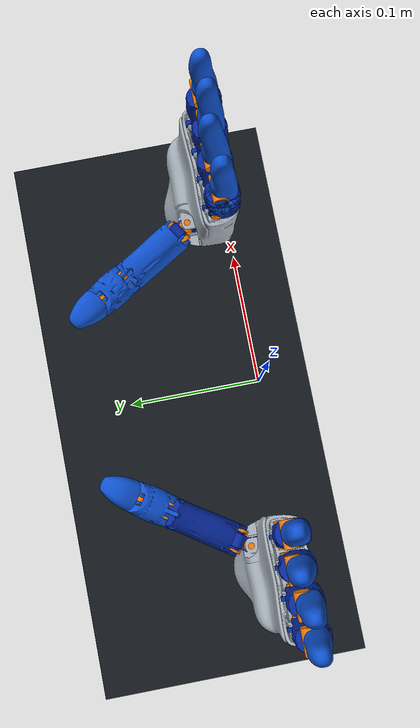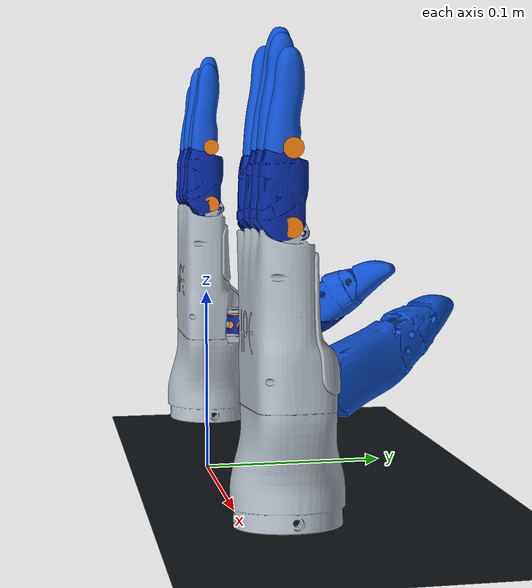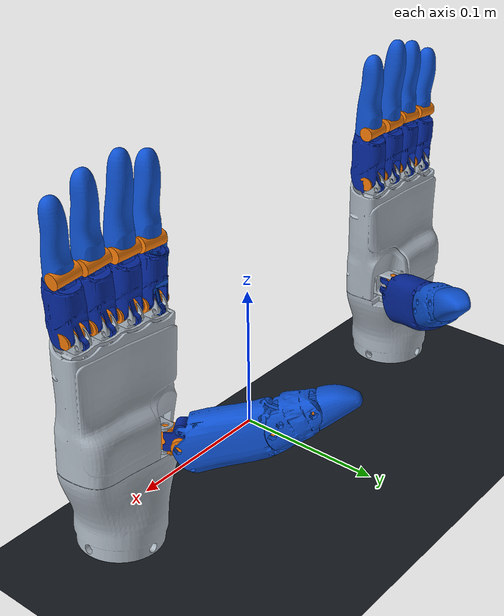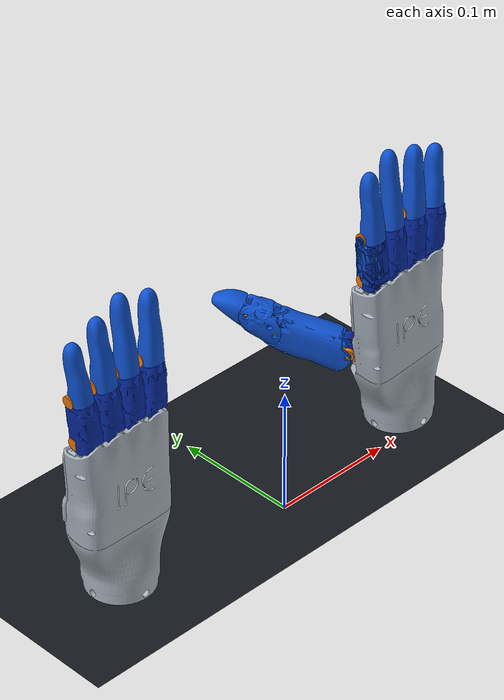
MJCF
<?xml version='1.0' encoding='utf-8'?>
<mujoco model="ih01_x1_dual_urdf">
  <compiler angle="radian" autolimits="true" />
  <option timestep="0.005" gravity="0 0 0" integrator="implicitfast" />
  <visual>
    <global offwidth="960" offheight="540" />
    <headlight ambient="0.26 0.26 0.28" diffuse="0.58 0.58 0.60" specular="0.14 0.14 0.14" />
    <rgba haze="0.06 0.075 0.10 1" />
  </visual>
  <asset>
    <texture name="sky" type="skybox" builtin="gradient" rgb1="0.025 0.035 0.055" rgb2="0.004 0.007 0.012" width="512" height="3072" />
    <texture name="floor_tex" type="2d" builtin="checker" mark="edge" rgb1="0.055 0.065 0.08" rgb2="0.11 0.13 0.16" markrgb="0.25 0.29 0.35" width="512" height="512" />
    <material name="floor" texture="floor_tex" texrepeat="5 5" reflectance="0" />
    <material name="shell_white" rgba="0.66 0.70 0.74 1" specular="0.22" shininess="0.32" />
    <material name="shell_blue" rgba="0.025 0.16 0.62 1" specular="0.20" shininess="0.30" />
    <material name="shell_blue_tip" rgba="0.055 0.32 0.82 1" specular="0.18" shininess="0.26" />
    <material name="joint_metal" rgba="0.95 0.48 0.035 1" specular="0.34" shininess="0.48" />
    <mesh name="lh_l_base_link" content_type="model/stl" file="../simulation/meshes/Dexhand-left/meshes/l_base_link.STL" />
    <mesh name="lh_l_thumb_yaw_Link" content_type="model/stl" file="../simulation/meshes/Dexhand-left/meshes/l_thumb_yaw_Link.STL" />
    <mesh name="lh_l_thumb_1_Link" content_type="model/stl" file="../simulation/meshes/Dexhand-left/meshes/l_thumb_1_Link.STL" />
    <mesh name="lh_l_thumb_2_Link" content_type="model/stl" file="../simulation/meshes/Dexhand-left/meshes/l_thumb_2_Link.STL" />
    <mesh name="lh_l_thumb_3_Link" content_type="model/stl" file="../simulation/meshes/Dexhand-left/meshes/l_thumb_3_Link.STL" />
    <mesh name="lh_l_index_1_Link" content_type="model/stl" file="../simulation/meshes/Dexhand-left/meshes/l_index_1_Link.STL" />
    <mesh name="lh_l_index_2_Link" content_type="model/stl" file="../simulation/meshes/Dexhand-left/meshes/l_index_2_Link.STL" />
    <mesh name="lh_l_middle_1_Link" content_type="model/stl" file="../simulation/meshes/Dexhand-left/meshes/l_middle_1_Link.STL" />
    <mesh name="lh_l_middle_2_Link" content_type="model/stl" file="../simulation/meshes/Dexhand-left/meshes/l_middle_2_Link.STL" />
    <mesh name="lh_l_ring_1_Link" content_type="model/stl" file="../simulation/meshes/Dexhand-left/meshes/l_ring_1_Link.STL" />
    <mesh name="lh_l_ring_2_Link" content_type="model/stl" file="../simulation/meshes/Dexhand-left/meshes/l_ring_2_Link.STL" />
    <mesh name="lh_l_little_1_Link" content_type="model/stl" file="../simulation/meshes/Dexhand-left/meshes/l_little_1_Link.STL" />
    <mesh name="lh_l_little_2_Link" content_type="model/stl" file="../simulation/meshes/Dexhand-left/meshes/l_little_2_Link.STL" />
    <mesh name="rh_base_link" content_type="model/stl" file="../simulation/meshes/revisions/2026-08-14-right-mesh-fix/Dexhand-right/meshes/base_link.STL" />
    <mesh name="rh_r_thumb1_Link" content_type="model/stl" file="../simulation/meshes/revisions/2026-08-14-right-mesh-fix/Dexhand-right/meshes/r_thumb1_Link.STL" />
    <mesh name="rh_r_thumb2_Link" content_type="model/stl" file="../simulation/meshes/revisions/2026-08-14-right-mesh-fix/Dexhand-right/meshes/r_thumb2_Link.STL" />
    <mesh name="rh_r_thumb3_Link" content_type="model/stl" file="../simulation/meshes/revisions/2026-08-14-right-mesh-fix/Dexhand-right/meshes/r_thumb3_Link.STL" />
    <mesh name="rh_r_thumb4_Link" content_type="model/stl" file="../simulation/meshes/revisions/2026-08-14-right-mesh-fix/Dexhand-right/meshes/r_thumb4_Link.STL" />
    <mesh name="rh_r_index1_Link" content_type="model/stl" file="../simulation/meshes/Dexhand-left/meshes/l_index_1_Link.STL" scale="-1 1 1" />
    <mesh name="rh_r_index2_Link" content_type="model/stl" file="../simulation/meshes/Dexhand-left/meshes/l_index_2_Link.STL" scale="-1 1 1" />
    <mesh name="rh_r_middle1_Link" content_type="model/stl" file="../simulation/meshes/Dexhand-left/meshes/l_middle_1_Link.STL" scale="-1 1 1" />
    <mesh name="rh_r_middle2_Link" content_type="model/stl" file="../simulation/meshes/Dexhand-left/meshes/l_middle_2_Link.STL" scale="-1 1 1" />
    <mesh name="rh_r_ring1_Link" content_type="model/stl" file="../simulation/meshes/Dexhand-left/meshes/l_ring_1_Link.STL" scale="-1 1 1" />
    <mesh name="rh_r_ring2_Link" content_type="model/stl" file="../simulation/meshes/Dexhand-left/meshes/l_ring_2_Link.STL" scale="-1 1 1" />
    <mesh name="rh_r_little1_Link" content_type="model/stl" file="../simulation/meshes/Dexhand-left/meshes/l_little_1_Link.STL" scale="-1 1 1" />
    <mesh name="rh_r_little2_Link" content_type="model/stl" file="../simulation/meshes/Dexhand-left/meshes/l_little_2_Link.STL" scale="-1 1 1" />
  </asset>
  <default>
    <joint damping="0.12" armature="0.0002" frictionloss="0.002" />
  </default>
  <worldbody>
    <light pos="-0.35 -0.30 0.70" dir="0.35 0.30 -0.70" diffuse="0.92 0.90 0.86" />
    <light pos="0.45 0.25 0.55" dir="-0.45 -0.25 -0.55" diffuse="0.38 0.48 0.72" />
    <geom name="ground" type="plane" pos="0 0 -0.01" size="1.20 1.20 0.01" material="floor" contype="1" conaffinity="3" condim="3" friction="0.8 0.1 0.01" />
    <body name="lh_hand" mocap="true" pos="-0.14 0.02 0.008" euler="3.14159265359 0 0">
      <geom type="mesh" mesh="lh_l_base_link" material="shell_white" contype="0" conaffinity="0" group="1" />
      <body name="l_thumb_yaw_Link" pos="0.020446 -0.014753 -0.058386">
        <inertial pos="0.00303049 -0.00371035 -0.00141075" quat="0.474801 0.870799 0.0842586 0.0957796" mass="0.00174074" diaginertia="8.47872e-08 6.66873e-08 4.47146e-08" />
        <joint name="l_thumb_yaw_joint" pos="0 0 0" axis="-0 -0 -1" range="0 1.39626" actuatorfrcrange="-2 2" />
        <geom type="mesh" mesh="lh_l_thumb_yaw_Link" material="shell_blue" contype="0" conaffinity="0" group="1" />
        <body name="l_thumb_1_Link" pos="0.0049487 -0.007826 0.001476">
          <inertial pos="0.0142859 -0.0212435 -0.00616423" quat="0.503216 0.813632 0.247672 0.153084" mass="0.0139644" diaginertia="5.1503e-06 3.8977e-06 1.48447e-06" />
          <joint name="l_thumb_1_joint" pos="0 0 0" axis="0.830459 0.557079 0" range="0 0.959931" actuatorfrcrange="-2 2" />
          <geom type="mesh" mesh="lh_l_thumb_1_Link" material="shell_blue" contype="0" conaffinity="0" group="1" />
          <body name="l_thumb_2_Link" pos="0.029608 -0.044138 -0.016524">
            <inertial pos="0.00607042 -0.00916419 -0.00734525" quat="0.448241 -0.277611 0.145575 0.83715" mass="0.00959607" diaginertia="1.21971e-06 1.135e-06 9.86428e-07" />
            <joint name="l_thumb_2_joint" pos="0 0 0" axis="0.830459 0.557079 0" range="0 1.22173" actuatorfrcrange="-2 2" stiffness="0.12" springref="0" damping="0.18" />
            <geom type="mesh" mesh="lh_l_thumb_2_Link" material="shell_blue_tip" contype="0" conaffinity="0" group="1" />
            <body name="l_thumb_3_Link" pos="0.010875 -0.016212 -0.010673">
              <inertial pos="0.0065033 -0.0097578 -0.0085891" quat="0.195416 0.803294 -0.428548 0.364524" mass="0.0060246" diaginertia="3.8969e-07 3.72891e-07 2.7668e-07" />
              <joint name="l_thumb_3_joint" pos="0 0 0" axis="0.830459 0.557079 0" range="0 1.39626" actuatorfrcrange="-2 2" stiffness="0.12" springref="0" damping="0.18" />
              <geom type="mesh" mesh="lh_l_thumb_3_Link" material="shell_blue_tip" contype="0" conaffinity="0" group="1" />
              <site name="lh_l_thumb_3_joint_axis" type="cylinder" pos="0 0 0" quat="0.70710678 -0.3939145 0.58722344 0" size="0.0048 0.0085" material="joint_metal" group="2" />
              <geom name="lh_l_thumb_3_Link_collision" type="capsule" fromto="0 0 0 0.013 -0.0195 -0.0172" size="0.0095" contype="1" conaffinity="3" condim="3" friction="0.7 0.03 0.005" margin="0.0008" rgba="0 0 0 0" group="4" />
            </body>
            <site name="lh_l_thumb_2_joint_axis" type="cylinder" pos="0 0 0" quat="0.70710678 -0.3939145 0.58722344 0" size="0.0048 0.0085" material="joint_metal" group="2" />
            <geom name="lh_l_thumb_2_Link_collision" type="capsule" fromto="0 0 0 0.010875 -0.016212 -0.010673" size="0.0095" contype="1" conaffinity="3" condim="3" friction="0.7 0.03 0.005" margin="0.0008" rgba="0 0 0 0" group="4" />
          </body>
          <site name="lh_l_thumb_1_joint_axis" type="cylinder" pos="0 0 0" quat="0.70710678 -0.3939145 0.58722344 0" size="0.0048 0.0085" material="joint_metal" group="2" />
        </body>
        <site name="lh_l_thumb_yaw_joint_axis" type="cylinder" pos="0 0 0" quat="0 1 0 0" size="0.0048 0.0085" material="joint_metal" group="2" />
      </body>
      <body name="l_index_1_Link" pos="0.026544 0.00265 -0.13762">
        <inertial pos="0.00055471 0.0039159 -0.013508" quat="0.997619 -0.0663002 -0.0189771 -0.00013727" mass="0.0068893" diaginertia="1.00759e-06 9.74777e-07 4.5437e-07" />
        <joint name="l_index_1_joint" pos="0 0 0" axis="-0.999292 0 -0.0376151" range="0 1.39626" actuatorfrcrange="-2 2" />
        <geom type="mesh" mesh="lh_l_index_1_Link" material="shell_blue" contype="0" conaffinity="0" group="1" />
        <body name="l_index_2_Link" pos="0.0013535 0.00016841 -0.035957">
          <inertial pos="0.000803053 0.0025252 -0.0213918" quat="0.998579 -0.0498121 -0.01891 -0.000639823" mass="0.0083279" diaginertia="1.86257e-06 1.85363e-06 2.22203e-07" />
          <joint name="l_index_2_joint" pos="0 0 0" axis="-0.999292 -0 -0.0376151" range="0 1.5708" actuatorfrcrange="-2 2" stiffness="0.16" springref="0" damping="0.20" />
          <geom type="mesh" mesh="lh_l_index_2_Link" material="shell_blue_tip" contype="0" conaffinity="0" group="1" />
          <site name="lh_l_index_2_joint_axis" type="cylinder" pos="0 0 0" quat="0.69368036 0 -0.72028297 0" size="0.0048 0.0085" material="joint_metal" group="2" />
          <geom name="lh_l_index_2_Link_collision" type="capsule" fromto="0 0 0 0 0 -0.043" size="0.008" contype="1" conaffinity="3" condim="3" friction="0.7 0.03 0.005" margin="0.0008" rgba="0 0 0 0" group="4" />
        </body>
        <site name="lh_l_index_1_joint_axis" type="cylinder" pos="0 0 0" quat="0.69368036 -0 -0.72028297 0" size="0.0048 0.0085" material="joint_metal" group="2" />
      </body>
      <body name="l_middle_1_Link" pos="0.0074174 0.00265 -0.13796">
        <inertial pos="2.0834e-06 0.0035571 -0.013624" quat="0.996851 -0.0792723 0.00142356 0.00125434" mass="0.0068893" diaginertia="1.0076e-06 9.74474e-07 4.54661e-07" />
        <joint name="l_middle_1_joint" pos="0 0 0" axis="-0.999995 0 0.00323982" range="0 1.39626" actuatorfrcrange="-2 2" />
        <geom type="mesh" mesh="lh_l_middle_1_Link" material="shell_blue" contype="0" conaffinity="0" group="1" />
        <body name="l_middle_2_Link" pos="-0.00011655 -0.00078748 -0.035975">
          <inertial pos="-7.9346e-05 0.00153957 -0.0238387" quat="0.997879 -0.0650835 0.00151093 0.000166722" mass="0.00916877" diaginertia="2.46857e-06 2.4482e-06 2.4433e-07" />
          <joint name="l_middle_2_joint" pos="0 0 0" axis="-0.999995 -0 0.00323982" range="0 1.5708" actuatorfrcrange="-2 2" stiffness="0.16" springref="0" damping="0.20" />
          <geom type="mesh" mesh="lh_l_middle_2_Link" material="shell_blue_tip" contype="0" conaffinity="0" group="1" />
          <site name="lh_l_middle_2_joint_axis" type="cylinder" pos="0 0 0" quat="0.7082513 0 -0.7059604 0" size="0.0048 0.0085" material="joint_metal" group="2" />
          <geom name="lh_l_middle_2_Link_collision" type="capsule" fromto="0 0 0 0 0 -0.048" size="0.008" contype="1" conaffinity="3" condim="3" friction="0.7 0.03 0.005" margin="0.0008" rgba="0 0 0 0" group="4" />
        </body>
        <site name="lh_l_middle_1_joint_axis" type="cylinder" pos="0 0 0" quat="0.7082513 -0 -0.7059604 0" size="0.0048 0.0085" material="joint_metal" group="2" />
      </body>
      <body name="l_ring_1_Link" pos="-0.011613 0.00265 -0.13744">
        <inertial pos="-0.00063012 0.0039157 -0.013504" quat="0.997493 -0.0662395 0.0247613 0.00277741" mass="0.0068892" diaginertia="1.00763e-06 9.74777e-07 4.54361e-07" />
        <joint name="l_ring_1_joint" pos="0 0 0" axis="-0.998748 0 0.0500289" range="0 1.39626" actuatorfrcrange="-2 2" />
        <geom type="mesh" mesh="lh_l_ring_1_Link" material="shell_blue" contype="0" conaffinity="0" group="1" />
        <body name="l_ring_2_Link" pos="-0.0018002 0.00016841 -0.035937">
          <inertial pos="-0.0010732 0.0025253 -0.02138" quat="0.998449 -0.0497854 0.024877 0.00162916" mass="0.0083278" diaginertia="1.86252e-06 1.85365e-06 2.22197e-07" />
          <joint name="l_ring_2_joint" pos="0 0 0" axis="-0.996195 -0 0.0871564" range="0 1.5708" actuatorfrcrange="-2 2" stiffness="0.16" springref="0" damping="0.20" />
          <geom type="mesh" mesh="lh_l_ring_2_Link" material="shell_blue_tip" contype="0" conaffinity="0" group="1" />
          <site name="lh_l_ring_2_joint_axis" type="cylinder" pos="0 0 0" quat="0.73727755 0 -0.67558998 0" size="0.0048 0.0085" material="joint_metal" group="2" />
          <geom name="lh_l_ring_2_Link_collision" type="capsule" fromto="0 0 0 0 0 -0.043" size="0.008" contype="1" conaffinity="3" condim="3" friction="0.7 0.03 0.005" margin="0.0008" rgba="0 0 0 0" group="4" />
        </body>
        <site name="lh_l_ring_1_joint_axis" type="cylinder" pos="0 0 0" quat="0.7245788 -0 -0.68919196 0" size="0.0048 0.0085" material="joint_metal" group="2" />
      </body>
      <body name="l_little_1_Link" pos="-0.030714 0.00265 -0.13605">
        <inertial pos="9.37216e-05 -0.00391585 -0.0135189" quat="0.9978 0.0662921 -0.00020608 -0.00112124" mass="0.00688931" diaginertia="1.00761e-06 9.74778e-07 4.5437e-07" />
        <joint name="l_little_1_joint" pos="0 0 0" axis="-0.996195 0 0.0871564" range="0 1.39626" actuatorfrcrange="-2 2" />
        <geom type="mesh" mesh="lh_l_little_1_Link" material="shell_blue" contype="0" conaffinity="0" group="1" />
        <body name="l_little_2_Link" pos="-0.0031349 0.00016975 -0.035832">
          <inertial pos="-0.0015865 0.0025076 -0.018095" quat="0.997276 -0.059618 0.0433541 0.00249154" mass="0.0065771" diaginertia="1.08557e-06 1.07752e-06 1.60199e-07" />
          <joint name="l_little_2_joint" pos="0 0 0" axis="-0.996195 -0 0.0871564" range="0 1.5708" actuatorfrcrange="-2 2" stiffness="0.16" springref="0" damping="0.20" />
          <geom type="mesh" mesh="lh_l_little_2_Link" material="shell_blue_tip" contype="0" conaffinity="0" group="1" />
          <site name="lh_l_little_2_joint_axis" type="cylinder" pos="0 0 0" quat="0.73727755 0 -0.67558998 0" size="0.0048 0.0085" material="joint_metal" group="2" />
          <geom name="lh_l_little_2_Link_collision" type="capsule" fromto="0 0 0 0 0 -0.039" size="0.008" contype="1" conaffinity="3" condim="3" friction="0.7 0.03 0.005" margin="0.0008" rgba="0 0 0 0" group="4" />
        </body>
        <site name="lh_l_little_1_joint_axis" type="cylinder" pos="0 0 0" quat="0.73727755 -0 -0.67558998 0" size="0.0048 0.0085" material="joint_metal" group="2" />
      </body>
      <geom name="lh_palm_collision" type="box" pos="0 -0.013 -0.073" size="0.052 0.014 0.052" contype="1" conaffinity="3" condim="3" friction="0.7 0.03 0.005" margin="0.0008" rgba="0 0 0 0" group="4" />
    </body>
    <body name="rh_hand" mocap="true" pos="0.14 0.02 0.008" euler="3.14159265359 0 0">
      <geom type="mesh" mesh="rh_base_link" material="shell_white" contype="0" conaffinity="0" group="1" />
      <body name="r_thumb1_Link" pos="-0.027072 -0.015739 -0.055499">
        <inertial pos="-0.0015511 -0.0027329 -0.0024235" quat="0.478109 0.865945 -0.062186 -0.132981" mass="0.0017407" diaginertia="8.47865e-08 6.66868e-08 4.47147e-08" />
        <joint name="r_thumb1_joint" pos="0 0 0" axis="0.0871564 0 0.996195" range="0 1.39626" actuatorfrcrange="-2 2" />
        <geom type="mesh" mesh="rh_r_thumb1_Link" material="shell_blue" contype="0" conaffinity="0" group="1" />
        <body name="r_thumb2_Link" pos="-0.0031983 -0.0068542 0.00061844">
          <inertial pos="-0.01474 -0.021457 -0.0044646" quat="0.520277 0.802354 -0.222747 -0.189534" mass="0.013886" diaginertia="5.12903e-06 3.8821e-06 1.47877e-06" />
          <joint name="r_thumb2_joint" pos="0 0 0" axis="0.82893 -0.55463 -0.072522" range="0 0.959931" actuatorfrcrange="-2 2" />
          <geom type="mesh" mesh="rh_r_thumb2_Link" material="shell_blue_tip" contype="0" conaffinity="0" group="1" />
          <body name="r_thumb3_Link" pos="-0.030794 -0.044317 -0.01304">
            <inertial pos="-0.00672413 -0.00946996 -0.00628531" quat="0.825366 -0.129743 0.310791 0.453152" mass="0.00938232" diaginertia="1.21197e-06 1.11419e-06 9.73065e-07" />
            <joint name="r_thumb3_joint" pos="0 0 0" axis="0.82893 -0.55463 -0.072522" range="0 1.22173" actuatorfrcrange="-2 2" stiffness="0.12" springref="0" damping="0.18" />
            <geom type="mesh" mesh="rh_r_thumb3_Link" material="shell_blue_tip" contype="0" conaffinity="0" group="1" />
            <body name="r_thumb4_Link" pos="-0.012257 -0.01718 -0.0087094">
              <inertial pos="-0.00684703 -0.00953345 -0.00762481" quat="0.41841 0.433265 -0.776309 0.185902" mass="0.00602459" diaginertia="3.89688e-07 3.72888e-07 2.7668e-07" />
              <joint name="r_thumb4_joint" pos="0 0 0" axis="0.82893 -0.55463 -0.072522" range="0 1.39626" actuatorfrcrange="-2 2" stiffness="0.12" springref="0" damping="0.18" />
              <geom type="mesh" mesh="rh_r_thumb4_Link" material="shell_blue_tip" contype="0" conaffinity="0" group="1" />
              <site name="rh_r_thumb4_joint_axis" type="cylinder" pos="0 0 0" quat="0.68098383 0.40722724 0.60862714 0" size="0.0048 0.0085" material="joint_metal" group="2" />
              <geom name="rh_r_thumb4_Link_collision" type="capsule" fromto="0 0 0 -0.013 -0.0195 -0.0172" size="0.0095" contype="2" conaffinity="2" condim="3" friction="0.7 0.03 0.005" margin="0.0008" rgba="0 0 0 0" group="4" />
            </body>
            <site name="rh_r_thumb3_joint_axis" type="cylinder" pos="0 0 0" quat="0.68098383 0.40722724 0.60862714 0" size="0.0048 0.0085" material="joint_metal" group="2" />
            <geom name="rh_r_thumb3_Link_collision" type="capsule" fromto="0 0 0 -0.012257 -0.01718 -0.0087094" size="0.0095" contype="2" conaffinity="2" condim="3" friction="0.7 0.03 0.005" margin="0.0008" rgba="0 0 0 0" group="4" />
          </body>
          <site name="rh_r_thumb2_joint_axis" type="cylinder" pos="0 0 0" quat="0.68098383 0.40722724 0.60862714 0" size="0.0048 0.0085" material="joint_metal" group="2" />
        </body>
        <site name="rh_r_thumb1_joint_axis" type="cylinder" pos="0 0 0" quat="0.99904821 -0 0.043619701 0" size="0.0048 0.0085" material="joint_metal" group="2" />
      </body>
      <body name="r_index1_Link" pos="-0.038388 0.00265 -0.13478">
        <inertial pos="-0.00055471 0.0039159 -0.013508" quat="0.996697 -0.0521392 0.0621016 0.00437152" mass="0.0059322" diaginertia="9.0857e-07 8.74342e-07 3.64799e-07" />
        <joint name="r_index1_joint" pos="0 0 0" axis="-0.999292 -0 0.0376151" range="0 1.39626" actuatorfrcrange="-2 2" />
        <geom type="mesh" mesh="rh_r_index1_Link" material="shell_blue" contype="0" conaffinity="0" group="1" />
        <body name="r_index2_Link" pos="-0.0013535 0.00016841 -0.035957">
          <inertial pos="-0.000803053 0.0025252 -0.0213918" quat="0.996819 -0.0496899 0.0622127 0.00348921" mass="0.00828461" diaginertia="1.86237e-06 1.8535e-06 2.22096e-07" />
          <joint name="r_index2_joint" pos="0 0 0" axis="-0.999292 0 0.0376151" range="0 1.5708" actuatorfrcrange="-2 2" stiffness="0.16" springref="0" damping="0.20" />
          <geom type="mesh" mesh="rh_r_index2_Link" material="shell_blue_tip" contype="0" conaffinity="0" group="1" />
          <site name="rh_r_index2_joint_axis" type="cylinder" pos="0 0 0" quat="0.72028297 -0 -0.69368036 0" size="0.0048 0.0085" material="joint_metal" group="2" />
          <geom name="rh_r_index2_Link_collision" type="capsule" fromto="0 0 0 0 0 -0.043" size="0.008" contype="2" conaffinity="2" condim="3" friction="0.7 0.03 0.005" margin="0.0008" rgba="0 0 0 0" group="4" />
        </body>
        <site name="rh_r_index1_joint_axis" type="cylinder" pos="0 0 0" quat="0.72028297 0 -0.69368036 0" size="0.0048 0.0085" material="joint_metal" group="2" />
      </body>
      <body name="r_middle1_Link" pos="-0.019363 0.00265 -0.13679">
        <inertial pos="-2.0834e-06 0.0035571 -0.013624" quat="0.997758 -0.0522183 0.0417257 0.00330642" mass="0.00593218" diaginertia="9.08568e-07 8.74339e-07 3.64795e-07" />
        <joint name="r_middle1_joint" pos="0 0 0" axis="-0.999995 -0 -0.00323982" range="0 1.39626" actuatorfrcrange="-2 2" />
        <geom type="mesh" mesh="rh_r_middle1_Link" material="shell_blue" contype="0" conaffinity="0" group="1" />
        <body name="r_middle2_Link" pos="0.00011655 -0.00078748 -0.035975">
          <inertial pos="7.9346e-05 0.00153957 -0.0238387" quat="0.998158 -0.0438766 0.0418592 0.00195134" mass="0.00912541" diaginertia="2.46825e-06 2.44796e-06 2.44221e-07" />
          <joint name="r_middle2_joint" pos="0 0 0" axis="-0.999995 0 -0.00323982" range="0 1.5708" actuatorfrcrange="-2 2" stiffness="0.16" springref="0" damping="0.20" />
          <geom type="mesh" mesh="rh_r_middle2_Link" material="shell_blue_tip" contype="0" conaffinity="0" group="1" />
          <site name="rh_r_middle2_joint_axis" type="cylinder" pos="0 0 0" quat="0.7059604 -0 -0.7082513 0" size="0.0048 0.0085" material="joint_metal" group="2" />
          <geom name="rh_r_middle2_Link_collision" type="capsule" fromto="0 0 0 0 0 -0.048" size="0.008" contype="2" conaffinity="2" condim="3" friction="0.7 0.03 0.005" margin="0.0008" rgba="0 0 0 0" group="4" />
        </body>
        <site name="rh_r_middle1_joint_axis" type="cylinder" pos="0 0 0" quat="0.7059604 0 -0.7082513 0" size="0.0048 0.0085" material="joint_metal" group="2" />
      </body>
      <body name="r_ring1_Link" pos="-0.00045989 0.00265 -0.13793">
        <inertial pos="0.00063012 0.0039157 -0.013504" quat="0.998461 -0.0522885 0.0183625 0.00207533" mass="0.00593221" diaginertia="9.08572e-07 8.7434e-07 3.64797e-07" />
        <joint name="r_ring1_joint" pos="0 0 0" axis="-0.998748 -0 -0.0500289" range="0 1.39626" actuatorfrcrange="-2 2" />
        <geom type="mesh" mesh="rh_r_ring1_Link" material="shell_blue" contype="0" conaffinity="0" group="1" />
        <body name="r_ring2_Link" pos="0.0018002 0.00016841 -0.035937">
          <inertial pos="0.0010732 0.0025253 -0.02138" quat="0.998587 -0.0498082 0.0184694 0.00131092" mass="0.00828461" diaginertia="1.86237e-06 1.8535e-06 2.22096e-07" />
          <joint name="r_ring2_joint" pos="0 0 0" axis="-0.996195 0 -0.0871564" range="0 1.5708" actuatorfrcrange="-2 2" stiffness="0.16" springref="0" damping="0.20" />
          <geom type="mesh" mesh="rh_r_ring2_Link" material="shell_blue_tip" contype="0" conaffinity="0" group="1" />
          <site name="rh_r_ring2_joint_axis" type="cylinder" pos="0 0 0" quat="0.67558998 -0 -0.73727755 0" size="0.0048 0.0085" material="joint_metal" group="2" />
          <geom name="rh_r_ring2_Link_collision" type="capsule" fromto="0 0 0 0 0 -0.043" size="0.008" contype="2" conaffinity="2" condim="3" friction="0.7 0.03 0.005" margin="0.0008" rgba="0 0 0 0" group="4" />
        </body>
        <site name="rh_r_ring1_joint_axis" type="cylinder" pos="0 0 0" quat="0.68919196 0 -0.7245788 0" size="0.0048 0.0085" material="joint_metal" group="2" />
      </body>
      <body name="r_little1_Link" pos="0.01869 0.00265 -0.1382">
        <inertial pos="-9.37216e-05 -0.00391585 -0.0135189" quat="0.9978 -0.0662921 -0.00020608 0.00112124" mass="0.00688931" diaginertia="1.00761e-06 9.74778e-07 4.5437e-07" />
        <joint name="r_little1_joint" pos="0 0 0" axis="-0.996195 -0 -0.0871564" range="0 1.39626" actuatorfrcrange="-2 2" />
        <geom type="mesh" mesh="rh_r_little1_Link" material="shell_blue" contype="0" conaffinity="0" group="1" />
        <body name="r_little2_Link" pos="0.0031349 0.00016975 -0.035832">
          <inertial pos="0.0015865 0.0025076 -0.018095" quat="0.998218 -0.0596694 -0.000209857 -0.000297997" mass="0.00653354" diaginertia="1.08526e-06 1.07731e-06 1.6009e-07" />
          <joint name="r_little2_joint" pos="0 0 0" axis="-0.996195 0 -0.0871564" range="0 1.5708" actuatorfrcrange="-2 2" stiffness="0.16" springref="0" damping="0.20" />
          <geom type="mesh" mesh="rh_r_little2_Link" material="shell_blue_tip" contype="0" conaffinity="0" group="1" />
          <site name="rh_r_little2_joint_axis" type="cylinder" pos="0 0 0" quat="0.67558998 -0 -0.73727755 0" size="0.0048 0.0085" material="joint_metal" group="2" />
          <geom name="rh_r_little2_Link_collision" type="capsule" fromto="0 0 0 0 0 -0.039" size="0.008" contype="2" conaffinity="2" condim="3" friction="0.7 0.03 0.005" margin="0.0008" rgba="0 0 0 0" group="4" />
        </body>
        <site name="rh_r_little1_joint_axis" type="cylinder" pos="0 0 0" quat="0.67558998 0 -0.73727755 0" size="0.0048 0.0085" material="joint_metal" group="2" />
      </body>
      <geom name="rh_palm_collision" type="box" pos="-0.012 -0.013 -0.073" size="0.052 0.014 0.052" contype="2" conaffinity="2" condim="3" friction="0.7 0.03 0.005" margin="0.0008" rgba="0 0 0 0" group="4" />
    </body>
  </worldbody>
  <actuator>
    <position name="lh_index_flex" joint="l_index_1_joint" kp="24" ctrlrange="0 1.396263" forcerange="-2 2" />
    <position name="lh_middle_flex" joint="l_middle_1_joint" kp="24" ctrlrange="0 1.396263" forcerange="-2 2" />
    <position name="lh_ring_flex" joint="l_ring_1_joint" kp="24" ctrlrange="0 1.396263" forcerange="-2 2" />
    <position name="lh_pinky_flex" joint="l_little_1_joint" kp="24" ctrlrange="0 1.396263" forcerange="-2 2" />
    <position name="lh_thumb_opposition" joint="l_thumb_yaw_joint" kp="12" ctrlrange="0 0.7" forcerange="-2 2" />
    <position name="lh_thumb_flex" joint="l_thumb_1_joint" kp="20" ctrlrange="0 0.959931" forcerange="-2 2" />
    <position name="rh_index_flex" joint="r_index1_joint" kp="24" ctrlrange="0 1.396263" forcerange="-2 2" />
    <position name="rh_middle_flex" joint="r_middle1_joint" kp="24" ctrlrange="0 1.396263" forcerange="-2 2" />
    <position name="rh_ring_flex" joint="r_ring1_joint" kp="24" ctrlrange="0 1.396263" forcerange="-2 2" />
    <position name="rh_pinky_flex" joint="r_little1_joint" kp="24" ctrlrange="0 1.396263" forcerange="-2 2" />
    <position name="rh_thumb_opposition" joint="r_thumb1_joint" kp="12" ctrlrange="0 0.7" forcerange="-2 2" />
    <position name="rh_thumb_flex" joint="r_thumb2_joint" kp="20" ctrlrange="0 0.959931" forcerange="-2 2" />
  </actuator>
  <equality>
    <joint name="lh_index_spring_coupling" joint1="l_index_2_joint" joint2="l_index_1_joint" polycoef="0 1.05 0 0 0" solref="0.035 1" solimp="0.90 0.95 0.002" />
    <joint name="lh_middle_spring_coupling" joint1="l_middle_2_joint" joint2="l_middle_1_joint" polycoef="0 1.05 0 0 0" solref="0.035 1" solimp="0.90 0.95 0.002" />
    <joint name="lh_ring_spring_coupling" joint1="l_ring_2_joint" joint2="l_ring_1_joint" polycoef="0 1.05 0 0 0" solref="0.035 1" solimp="0.90 0.95 0.002" />
    <joint name="lh_pinky_spring_coupling" joint1="l_little_2_joint" joint2="l_little_1_joint" polycoef="0 1.05 0 0 0" solref="0.035 1" solimp="0.90 0.95 0.002" />
    <joint name="lh_thumb_middle_spring_coupling" joint1="l_thumb_2_joint" joint2="l_thumb_1_joint" polycoef="0 1.15 0 0 0" solref="0.040 1" solimp="0.88 0.95 0.003" />
    <joint name="lh_thumb_distal_spring_coupling" joint1="l_thumb_3_joint" joint2="l_thumb_1_joint" polycoef="0 1.3 0 0 0" solref="0.040 1" solimp="0.88 0.95 0.003" />
    <joint name="rh_index_spring_coupling" joint1="r_index2_joint" joint2="r_index1_joint" polycoef="0 1.05 0 0 0" solref="0.035 1" solimp="0.90 0.95 0.002" />
    <joint name="rh_middle_spring_coupling" joint1="r_middle2_joint" joint2="r_middle1_joint" polycoef="0 1.05 0 0 0" solref="0.035 1" solimp="0.90 0.95 0.002" />
    <joint name="rh_ring_spring_coupling" joint1="r_ring2_joint" joint2="r_ring1_joint" polycoef="0 1.05 0 0 0" solref="0.035 1" solimp="0.90 0.95 0.002" />
    <joint name="rh_pinky_spring_coupling" joint1="r_little2_joint" joint2="r_little1_joint" polycoef="0 1.05 0 0 0" solref="0.035 1" solimp="0.90 0.95 0.002" />
    <joint name="rh_thumb_middle_spring_coupling" joint1="r_thumb3_joint" joint2="r_thumb2_joint" polycoef="0 1.15 0 0 0" solref="0.040 1" solimp="0.88 0.95 0.003" />
    <joint name="rh_thumb_distal_spring_coupling" joint1="r_thumb4_joint" joint2="r_thumb2_joint" polycoef="0 1.3 0 0 0" solref="0.040 1" solimp="0.88 0.95 0.003" />
  </equality>
</mujoco>
